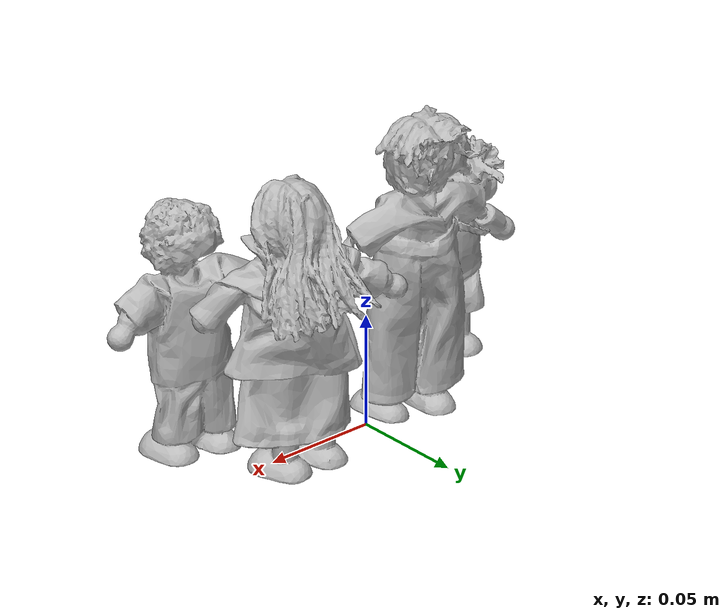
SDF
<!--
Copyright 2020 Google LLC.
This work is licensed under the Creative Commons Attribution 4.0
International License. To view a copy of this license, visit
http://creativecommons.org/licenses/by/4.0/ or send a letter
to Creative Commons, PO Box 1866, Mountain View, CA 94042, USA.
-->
<?xml version="1.0" ?>
<sdf version="1.6">
  <model name="MODERN_DOLL_FAMILY">
    <link name="link_0">
      <visual name="visual">
        <geometry>
          <mesh>
            <uri>meshes/model.obj</uri>
          </mesh>
        </geometry>
      </visual>
      <collision name="collision_0">
        <geometry>
          <mesh>
            <uri>meshes/model.obj</uri>
          </mesh>
        </geometry>
      </collision>
    </link>
  </model>
</sdf>
